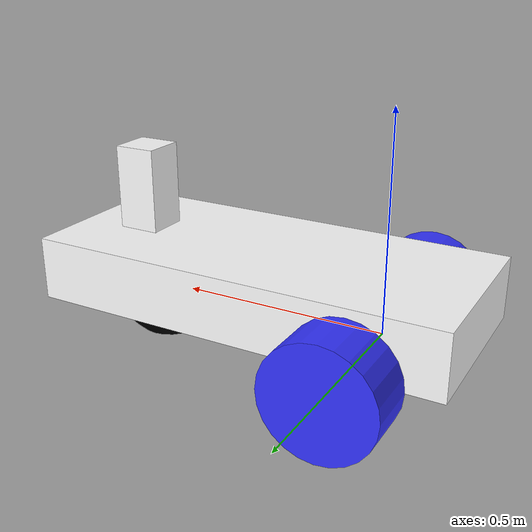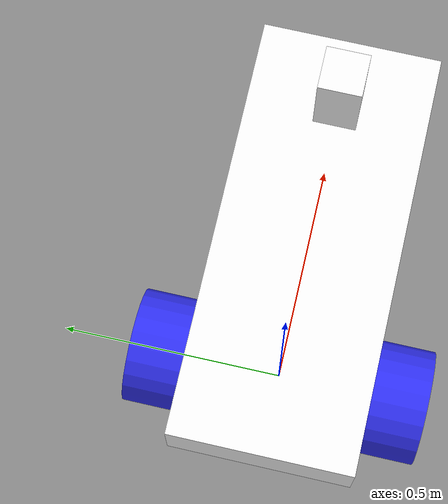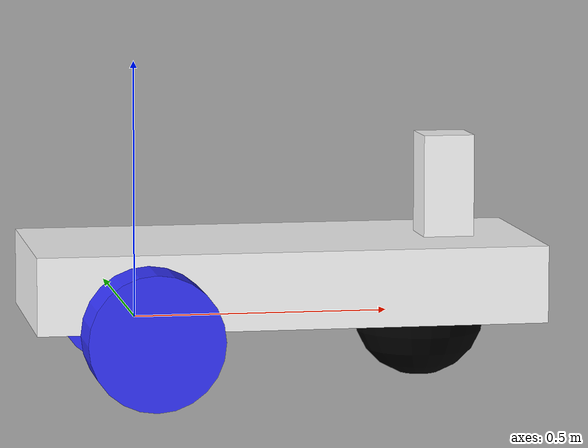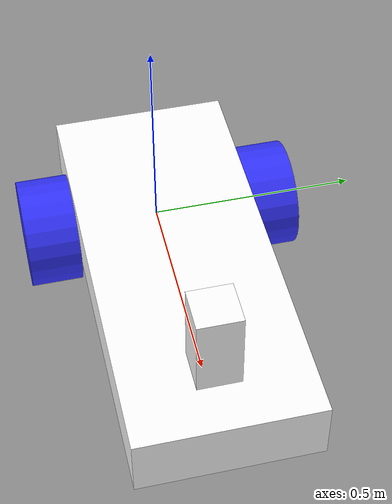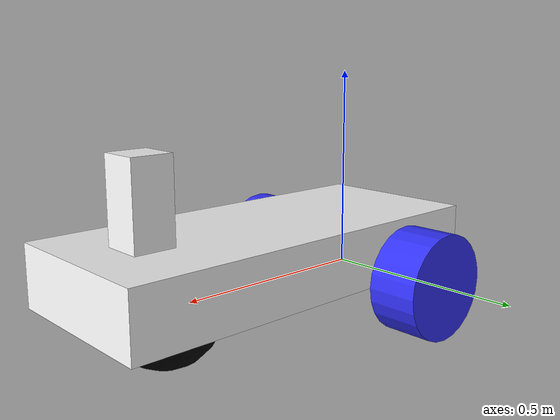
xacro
<?xml version="1.0"?>
<robot xmlns:xacro="http://www.ros.org/wiki/xacro"  name="robot">

    <xacro:include filename="robot_core.xacro" />
    <xacro:include filename="gazebo_parameters.xacro"/>
    <xacro:include filename="ros2_control.xacro" />
    <xacro:include filename="transmission.xacro" />
    <xacro:include filename="odom_plugin.xacro" />
    <xacro:include filename="sensors.xacro"/>

    <xacro:add_ultrasonic_sensors parent="base_link"/>

</robot>

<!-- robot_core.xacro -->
<robot xmlns:xacro="http://www.ros.org/wiki/xacro" >

    <xacro:include filename="inertial_macros.xacro"/>

    <material name="white">
        <color rgba="1 1 1 1" />
    </material>

    <material name="orange">
        <color rgba="1 0.3 0.1 1"/>
    </material>

    <material name="blue">
        <color rgba="0.2 0.2 1 1"/>
    </material>

    <material name="black">
        <color rgba="0 0 0 1"/>
    </material>

    <!-- BASE LINK -->

    <link name="base_link">

    </link>

    <!-- CHASSIS LINK -->

    <joint name="chassis_joint" type="fixed">
        <parent link="base_link"/>
        <child link="chassis"/>
        <origin xyz="-0.212 0 0"/>
    </joint>

    <link name="chassis">
        <visual>
            <origin xyz="0.495 0 0.075"/>
            <geometry>
                <box size="0.99 0.42 0.15"/>
            </geometry>
            <material name="white"/>
        </visual>
        <collision>
            <origin xyz="0.495 0 0.075"/>
            <geometry>
                <box size="0.99 0.42 0.15"/>
            </geometry>
        </collision>
        <xacro:inertial_box mass="0.5" x="0.99" y="0.42" z="0.15">
            <origin xyz="0.15 0 0.075" rpy="0 0 0"/>
        </xacro:inertial_box>
    </link>

    <gazebo reference="chassis">
        <material>Gazebo/White</material>
    </gazebo>

    <!-- ARM LINK -->

    <joint name="arm_joint" type="fixed">
        <parent link="chassis"/>
        <child link="arm"/>
        <origin xyz="0.778 0 0.15"/>
    </joint>

    <link name="arm">
        <visual>
            <origin xyz="0.05 0 0.1"/>
            <geometry>
                <box size="0.1 0.1 0.2"/>
            </geometry>
            <material name="white"/>
        </visual>
        <collision>
            <origin xyz="0.05 0 0.1"/>
            <geometry>
                <box size="0.1 0.1 0.2"/>
            </geometry>
        </collision>
        <xacro:inertial_box mass="0.5" x="0.1" y="0.1" z="0.2">
            <origin xyz="0.05 0 0.1" rpy="0 0 0"/>
        </xacro:inertial_box>
    </link>

    <gazebo reference="arm">
        <material>Gazebo/White</material>
    </gazebo>

    <!-- LEFT WHEEL LINK -->

    <joint name="left_wheel_joint" type="continuous">
        <parent link="base_link"/>
        <child link="left_wheel"/>
        <origin xyz="0 0.2725 0" rpy="-${pi/2} 0 0" />
        <axis xyz="0 0 1"/>
    </joint>

    <link name="left_wheel">
        <visual>
            <geometry>
                <cylinder radius="0.13" length="0.125"/>
            </geometry>
            <material name="blue"/>
        </visual>
        <collision>
            <geometry>
                <cylinder radius="0.13" length="0.125"/>
            </geometry>
        </collision>
        <xacro:inertial_cylinder mass="0.1" length="0.125" radius="0.13">
            <origin xyz="0 0 0" rpy="0 0 0"/>
        </xacro:inertial_cylinder>
    </link>

    <gazebo reference="left_wheel">
        <material>Gazebo/Blue</material>
    </gazebo>

    <!-- RIGHT WHEEL LINK -->

    <joint name="right_wheel_joint" type="continuous">
        <parent link="base_link"/>
        <child link="right_wheel"/>
        <origin xyz="0 -0.2725 0" rpy="${pi/2} 0 0" />
        <axis xyz="0 0 -1"/>
    </joint>

    <link name="right_wheel">
        <visual>
            <geometry>
                <cylinder radius="0.13" length="0.125"/>
            </geometry>
            <material name="blue"/>
        </visual>
        <collision>
            <geometry>
                <cylinder radius="0.13" length="0.125"/>
            </geometry>
        </collision>
        <xacro:inertial_cylinder mass="0.1" length="0.125" radius="0.13">
            <origin xyz="0 0 0" rpy="0 0 0"/>
        </xacro:inertial_cylinder>
    </link>

    <gazebo reference="right_wheel">
        <material>Gazebo/Blue</material>
    </gazebo>

    <!-- CASTER WHEEL LINK -->

    <joint name="caster_wheel_joint" type="fixed">
        <parent link="chassis"/>
        <child link="caster_wheel"/>
        <origin xyz="0.778 0 0"/>
    </joint>

    <link name="caster_wheel">
        <visual>
            <geometry>
                <sphere radius="0.13"/>
            </geometry>
            <material name="black"/>
        </visual>
        <collision>
            <geometry>
                <sphere radius="0.13"/>
            </geometry>
        </collision>
        <xacro:inertial_sphere mass="0.1" radius="0.13">
            <origin xyz="0 0 0" rpy="0 0 0"/>
        </xacro:inertial_sphere>
    </link>

    <gazebo reference="caster_wheel">
        <material>Gazebo/Black</material>
        <mu1 value="0.001"/>
        <mu2 value="0.001"/>
    </gazebo>

</robot>

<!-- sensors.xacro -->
<robot xmlns:xacro="http://www.ros.org/wiki/xacro">

    <!-- SRF08 Ultrasonic Sensor Macro with Gazebo plugin -->
    <xacro:macro name="srf08_sensor" params="name parent x y z yaw">

        <joint name="${name}_joint" type="fixed">
            <parent link="${parent}"/>
            <child link="${name}_frame"/>
            <origin xyz="${x} ${y} ${z}" rpy="0 0 ${yaw}"/>
        </joint>

        <link name="${name}_frame">
            <visual>
                <geometry>
                    <cylinder radius="0.008" length="0.015"/>
                </geometry>
                <material name="blue"/>
            </visual>
            <collision>
                <geometry>
                    <cylinder radius="0.008" length="0.015"/>
                </geometry>
            </collision>
            <xacro:inertial_cylinder mass="0.01" length="0.015" radius="0.008">
                <origin xyz="0 0 0" rpy="0 0 0"/>
            </xacro:inertial_cylinder>
        </link>

        <!-- Gazebo sensor plugin (simulates SRF08) -->
        <gazebo reference="${name}_frame">
            <material>Gazebo/Blue</material>

            <sensor name="${name}" type="ray">
                <pose>0 0 0 0 0 0</pose>
                <visualize>true</visualize>
                <update_rate>10</update_rate>
                <ray>
                    <scan>
                        <horizontal>
                            <samples>5</samples>
                            <min_angle>-0.26</min_angle>  <!-- ~30 degrees spread -->
                            <max_angle>0.26</max_angle>
                        </horizontal>
                    </scan>
                    <range>
                        <min>0.03</min>  <!-- SRF08 min range -->
                        <max>6.0</max>   <!-- SRF08 max range -->
                    </range>
                </ray>
                <plugin name="${name}_controller" filename="libgazebo_ros_ray_sensor.so">
                    <ros>
                        <remapping>~/out:=ultrasonic/${name}</remapping>
                    </ros>
                    <output_type>sensor_msgs/LaserScan</output_type>
                    <frame_name>${name}_frame</frame_name>
                </plugin>
            </sensor>
        </gazebo>

    </xacro:macro>

    <!-- Add all 6 sensors based on your layout -->
    <xacro:macro name="add_ultrasonic_sensors" params="parent">

        <!-- Front sensor (S1) -->
        <xacro:srf08_sensor name="s1_front" parent="${parent}"
                           x="0.19" y="0" z="0.0725" yaw="0"/>

        <!-- Front-right sensor (S2) -->
        <xacro:srf08_sensor name="s2_front_right" parent="${parent}"
                           x="0.13" y="-0.075" z="0.0725" yaw="-1.047"/>

        <!-- Back-right sensor (S3) -->
        <xacro:srf08_sensor name="s3_back_right" parent="${parent}"
                           x="-0.13" y="-0.075" z="0.0725" yaw="-2.094"/>

        <!-- Back sensor (S4) -->
        <xacro:srf08_sensor name="s4_back" parent="${parent}"
                           x="-0.19" y="0" z="0.0725" yaw="3.14159"/>

        <!-- Back-left sensor (S5) -->
        <xacro:srf08_sensor name="s5_back_left" parent="${parent}"
                           x="-0.13" y="0.075" z="0.0725" yaw="2.094"/>

        <!-- Front-left sensor (S6) -->
        <xacro:srf08_sensor name="s6_front_left" parent="${parent}"
                           x="0.13" y="0.075" z="0.0725" yaw="1.047"/>

    </xacro:macro>

</robot>
